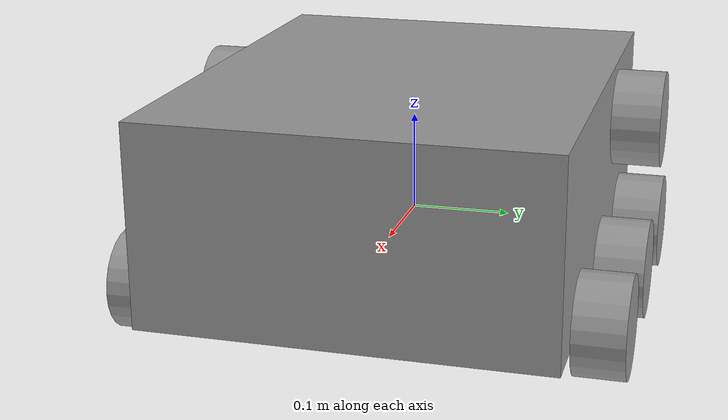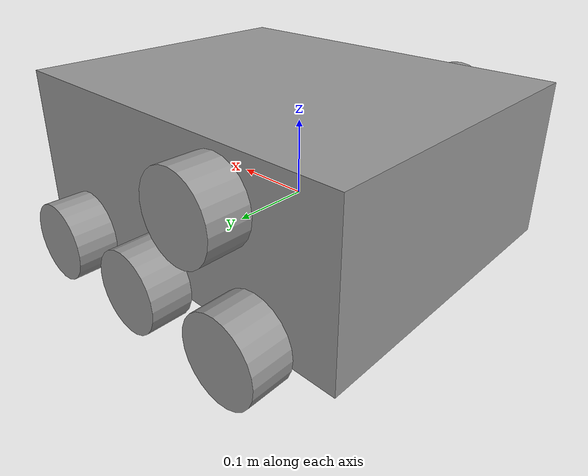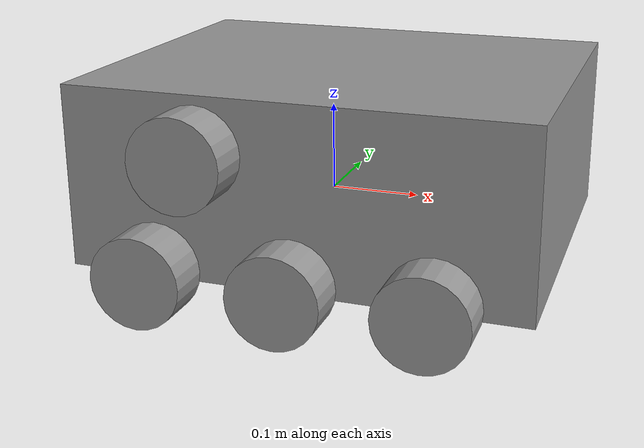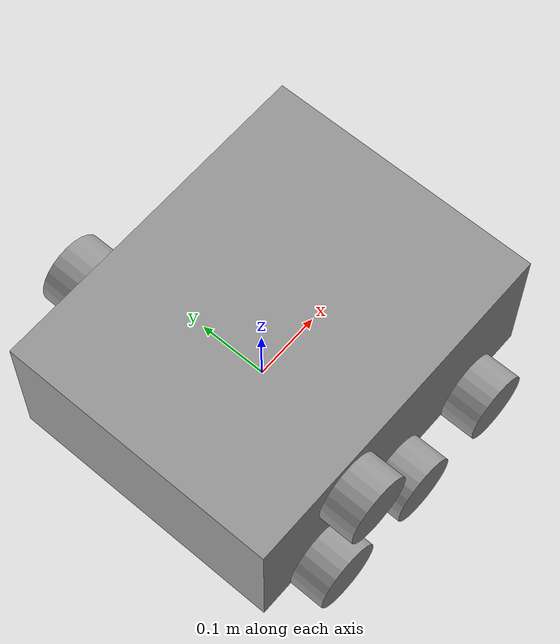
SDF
<?xml version='1.0'?>
<sdf version='1.6'>
  <model name='Guntank_base'>
    <link name='link_0'>
      <pose frame=''>0.022222 1e-06 0.051111 0 -0 0</pose>
      <inertial>
        <mass>1</mass>
        <inertia>
          <ixx>0.166667</ixx>
          <ixy>0</ixy>
          <ixz>0</ixz>
          <iyy>0.166667</iyy>
          <iyz>0</iyz>
          <izz>0.166667</izz>
        </inertia>
        <pose frame=''>0 0 0 0 -0 0</pose>
      </inertial>
      <gravity>1</gravity>
      <self_collide>0</self_collide>
      <kinematic>0</kinematic>
      <visual name='visual'>
        <pose frame=''>0 0 0 0 -0 0</pose>
        <geometry>
          <box>
            <size>0.5 0.4 0.2</size>
          </box>
        </geometry>
        <material>
          <lighting>1</lighting>
          <script>
            <uri>file://media/materials/scripts/gazebo.material</uri>
            <name>Gazebo/Grey</name>
          </script>
          <ambient>0.3 0.3 0.3 1</ambient>
          <diffuse>0.7 0.7 0.7 1</diffuse>
          <specular>0.01 0.01 0.01 1</specular>
          <emissive>0 0 0 1</emissive>
          <shader type='vertex'>
            <normal_map>__default__</normal_map>
          </shader>
        </material>
        <transparency>0</transparency>
        <cast_shadows>1</cast_shadows>
      </visual>
      <collision name='collision'>
        <laser_retro>0</laser_retro>
        <max_contacts>10</max_contacts>
        <pose frame=''>0 0 0 0 -0 0</pose>
        <geometry>
          <box>
            <size>0.5 0.4 0.2</size>
          </box>
        </geometry>
        <surface>
          <friction>
            <ode>
              <mu>1</mu>
              <mu2>1</mu2>
              <fdir1>0 0 0</fdir1>
              <slip1>0</slip1>
              <slip2>0</slip2>
            </ode>
            <torsional>
              <coefficient>1</coefficient>
              <patch_radius>0</patch_radius>
              <surface_radius>0</surface_radius>
              <use_patch_radius>1</use_patch_radius>
              <ode>
                <slip>0</slip>
              </ode>
            </torsional>
          </friction>
          <bounce>
            <restitution_coefficient>0</restitution_coefficient>
            <threshold>1e+06</threshold>
          </bounce>
          <contact>
            <collide_without_contact>0</collide_without_contact>
            <collide_without_contact_bitmask>1</collide_without_contact_bitmask>
            <collide_bitmask>1</collide_bitmask>
            <ode>
              <soft_cfm>0</soft_cfm>
              <soft_erp>0.2</soft_erp>
              <kp>1e+13</kp>
              <kd>1</kd>
              <max_vel>0.01</max_vel>
              <min_depth>0</min_depth>
            </ode>
            <bullet>
              <split_impulse>1</split_impulse>
              <split_impulse_penetration_threshold>-0.01</split_impulse_penetration_threshold>
              <soft_cfm>0</soft_cfm>
              <soft_erp>0.2</soft_erp>
              <kp>1e+13</kp>
              <kd>1</kd>
            </bullet>
          </contact>
        </surface>
      </collision>
    </link>
    <link name='link_1'>
      <pose frame=''>-0.127778 -0.225012 -0.038889 1.5707 -0 0</pose>
      <inertial>
        <mass>1</mass>
        <inertia>
          <ixx>0.145833</ixx>
          <ixy>0</ixy>
          <ixz>0</ixz>
          <iyy>0.145833</iyy>
          <iyz>0</iyz>
          <izz>0.125</izz>
        </inertia>
        <pose frame=''>0 0 0 0 -0 0</pose>
      </inertial>
      <gravity>1</gravity>
      <self_collide>0</self_collide>
      <kinematic>0</kinematic>
      <visual name='visual'>
        <pose frame=''>0 0 0 0 -0 0</pose>
        <geometry>
          <cylinder>
            <radius>0.05</radius>
            <length>0.05</length>
          </cylinder>
        </geometry>
        <material>
          <lighting>1</lighting>
          <script>
            <uri>file://media/materials/scripts/gazebo.material</uri>
            <name>Gazebo/Grey</name>
          </script>
          <ambient>0.3 0.3 0.3 1</ambient>
          <diffuse>0.7 0.7 0.7 1</diffuse>
          <specular>0.01 0.01 0.01 1</specular>
          <emissive>0 0 0 1</emissive>
          <shader type='vertex'>
            <normal_map>__default__</normal_map>
          </shader>
        </material>
        <transparency>0</transparency>
        <cast_shadows>1</cast_shadows>
      </visual>
      <collision name='collision'>
        <laser_retro>0</laser_retro>
        <max_contacts>10</max_contacts>
        <pose frame=''>0 0 0 0 -0 0</pose>
        <geometry>
          <cylinder>
            <radius>0.05</radius>
            <length>0.05</length>
          </cylinder>
        </geometry>
        <surface>
          <friction>
            <ode>
              <mu>1</mu>
              <mu2>1</mu2>
              <fdir1>0 0 0</fdir1>
              <slip1>0</slip1>
              <slip2>0</slip2>
            </ode>
            <torsional>
              <coefficient>1</coefficient>
              <patch_radius>0</patch_radius>
              <surface_radius>0</surface_radius>
              <use_patch_radius>1</use_patch_radius>
              <ode>
                <slip>0</slip>
              </ode>
            </torsional>
          </friction>
          <bounce>
            <restitution_coefficient>0</restitution_coefficient>
            <threshold>1e+06</threshold>
          </bounce>
          <contact>
            <collide_without_contact>0</collide_without_contact>
            <collide_without_contact_bitmask>1</collide_without_contact_bitmask>
            <collide_bitmask>1</collide_bitmask>
            <ode>
              <soft_cfm>0</soft_cfm>
              <soft_erp>0.2</soft_erp>
              <kp>1e+13</kp>
              <kd>1</kd>
              <max_vel>0.01</max_vel>
              <min_depth>0</min_depth>
            </ode>
            <bullet>
              <split_impulse>1</split_impulse>
              <split_impulse_penetration_threshold>-0.01</split_impulse_penetration_threshold>
              <soft_cfm>0</soft_cfm>
              <soft_erp>0.2</soft_erp>
              <kp>1e+13</kp>
              <kd>1</kd>
            </bullet>
          </contact>
        </surface>
      </collision>
    </link>
    <link name='link_1_clone'>
      <pose frame=''>0.022222 -0.225004 -0.038889 1.5707 -0 0</pose>
      <inertial>
        <mass>1</mass>
        <inertia>
          <ixx>0.145833</ixx>
          <ixy>0</ixy>
          <ixz>0</ixz>
          <iyy>0.145833</iyy>
          <iyz>0</iyz>
          <izz>0.125</izz>
        </inertia>
        <pose frame=''>0 0 0 0 -0 0</pose>
      </inertial>
      <self_collide>0</self_collide>
      <kinematic>0</kinematic>
      <visual name='visual'>
        <pose frame=''>0 0 0 0 -0 0</pose>
        <geometry>
          <cylinder>
            <radius>0.05</radius>
            <length>0.05</length>
          </cylinder>
        </geometry>
        <material>
          <lighting>1</lighting>
          <script>
            <uri>file://media/materials/scripts/gazebo.material</uri>
            <name>Gazebo/Grey</name>
          </script>
          <ambient>0.3 0.3 0.3 1</ambient>
          <diffuse>0.7 0.7 0.7 1</diffuse>
          <specular>0.01 0.01 0.01 1</specular>
          <emissive>0 0 0 1</emissive>
          <shader type='vertex'>
            <normal_map>__default__</normal_map>
          </shader>
        </material>
        <transparency>0</transparency>
        <cast_shadows>1</cast_shadows>
      </visual>
      <collision name='collision'>
        <laser_retro>0</laser_retro>
        <max_contacts>10</max_contacts>
        <pose frame=''>0 0 0 0 -0 0</pose>
        <geometry>
          <cylinder>
            <radius>0.05</radius>
            <length>0.05</length>
          </cylinder>
        </geometry>
        <surface>
          <friction>
            <ode>
              <mu>1</mu>
              <mu2>1</mu2>
              <fdir1>0 0 0</fdir1>
              <slip1>0</slip1>
              <slip2>0</slip2>
            </ode>
            <torsional>
              <coefficient>1</coefficient>
              <patch_radius>0</patch_radius>
              <surface_radius>0</surface_radius>
              <use_patch_radius>1</use_patch_radius>
              <ode>
                <slip>0</slip>
              </ode>
            </torsional>
          </friction>
          <bounce>
            <restitution_coefficient>0</restitution_coefficient>
            <threshold>1e+06</threshold>
          </bounce>
          <contact>
            <collide_without_contact>0</collide_without_contact>
            <collide_without_contact_bitmask>1</collide_without_contact_bitmask>
            <collide_bitmask>1</collide_bitmask>
            <ode>
              <soft_cfm>0</soft_cfm>
              <soft_erp>0.2</soft_erp>
              <kp>1e+13</kp>
              <kd>1</kd>
              <max_vel>0.01</max_vel>
              <min_depth>0</min_depth>
            </ode>
            <bullet>
              <split_impulse>1</split_impulse>
              <split_impulse_penetration_threshold>-0.01</split_impulse_penetration_threshold>
              <soft_cfm>0</soft_cfm>
              <soft_erp>0.2</soft_erp>
              <kp>1e+13</kp>
              <kd>1</kd>
            </bullet>
          </contact>
        </surface>
      </collision>
    </link>
    <link name='link_1_clone_0'>
      <pose frame=''>0.172222 -0.225004 -0.038889 1.5707 -0 0</pose>
      <inertial>
        <mass>1</mass>
        <inertia>
          <ixx>0.145833</ixx>
          <ixy>0</ixy>
          <ixz>0</ixz>
          <iyy>0.145833</iyy>
          <iyz>0</iyz>
          <izz>0.125</izz>
        </inertia>
        <pose frame=''>0 0 0 0 -0 0</pose>
      </inertial>
      <self_collide>0</self_collide>
      <kinematic>0</kinematic>
      <visual name='visual'>
        <pose frame=''>0 0 0 0 -0 0</pose>
        <geometry>
          <cylinder>
            <radius>0.05</radius>
            <length>0.05</length>
          </cylinder>
        </geometry>
        <material>
          <lighting>1</lighting>
          <script>
            <uri>file://media/materials/scripts/gazebo.material</uri>
            <name>Gazebo/Grey</name>
          </script>
          <ambient>0.3 0.3 0.3 1</ambient>
          <diffuse>0.7 0.7 0.7 1</diffuse>
          <specular>0.01 0.01 0.01 1</specular>
          <emissive>0 0 0 1</emissive>
          <shader type='vertex'>
            <normal_map>__default__</normal_map>
          </shader>
        </material>
        <transparency>0</transparency>
        <cast_shadows>1</cast_shadows>
      </visual>
      <collision name='collision'>
        <laser_retro>0</laser_retro>
        <max_contacts>10</max_contacts>
        <pose frame=''>0 0 0 0 -0 0</pose>
        <geometry>
          <cylinder>
            <radius>0.05</radius>
            <length>0.05</length>
          </cylinder>
        </geometry>
        <surface>
          <friction>
            <ode>
              <mu>1</mu>
              <mu2>1</mu2>
              <fdir1>0 0 0</fdir1>
              <slip1>0</slip1>
              <slip2>0</slip2>
            </ode>
            <torsional>
              <coefficient>1</coefficient>
              <patch_radius>0</patch_radius>
              <surface_radius>0</surface_radius>
              <use_patch_radius>1</use_patch_radius>
              <ode>
                <slip>0</slip>
              </ode>
            </torsional>
          </friction>
          <bounce>
            <restitution_coefficient>0</restitution_coefficient>
            <threshold>1e+06</threshold>
          </bounce>
          <contact>
            <collide_without_contact>0</collide_without_contact>
            <collide_without_contact_bitmask>1</collide_without_contact_bitmask>
            <collide_bitmask>1</collide_bitmask>
            <ode>
              <soft_cfm>0</soft_cfm>
              <soft_erp>0.2</soft_erp>
              <kp>1e+13</kp>
              <kd>1</kd>
              <max_vel>0.01</max_vel>
              <min_depth>0</min_depth>
            </ode>
            <bullet>
              <split_impulse>1</split_impulse>
              <split_impulse_penetration_threshold>-0.01</split_impulse_penetration_threshold>
              <soft_cfm>0</soft_cfm>
              <soft_erp>0.2</soft_erp>
              <kp>1e+13</kp>
              <kd>1</kd>
            </bullet>
          </contact>
        </surface>
      </collision>
    </link>
    <link name='link_1_clone_1'>
      <pose frame=''>-0.077778 -0.225004 0.091111 1.5707 -0 0</pose>
      <inertial>
        <mass>1</mass>
        <inertia>
          <ixx>0.145833</ixx>
          <ixy>0</ixy>
          <ixz>0</ixz>
          <iyy>0.145833</iyy>
          <iyz>0</iyz>
          <izz>0.125</izz>
        </inertia>
        <pose frame=''>0 0 0 0 -0 0</pose>
      </inertial>
      <self_collide>0</self_collide>
      <kinematic>0</kinematic>
      <visual name='visual'>
        <pose frame=''>0 0 0 0 -0 0</pose>
        <geometry>
          <cylinder>
            <radius>0.05</radius>
            <length>0.05</length>
          </cylinder>
        </geometry>
        <material>
          <lighting>1</lighting>
          <script>
            <uri>file://media/materials/scripts/gazebo.material</uri>
            <name>Gazebo/Grey</name>
          </script>
          <ambient>0.3 0.3 0.3 1</ambient>
          <diffuse>0.7 0.7 0.7 1</diffuse>
          <specular>0.01 0.01 0.01 1</specular>
          <emissive>0 0 0 1</emissive>
          <shader type='vertex'>
            <normal_map>__default__</normal_map>
          </shader>
        </material>
        <transparency>0</transparency>
        <cast_shadows>1</cast_shadows>
      </visual>
      <collision name='collision'>
        <laser_retro>0</laser_retro>
        <max_contacts>10</max_contacts>
        <pose frame=''>0 0 0 0 -0 0</pose>
        <geometry>
          <cylinder>
            <radius>0.05</radius>
            <length>0.05</length>
          </cylinder>
        </geometry>
        <surface>
          <friction>
            <ode>
              <mu>1</mu>
              <mu2>1</mu2>
              <fdir1>0 0 0</fdir1>
              <slip1>0</slip1>
              <slip2>0</slip2>
            </ode>
            <torsional>
              <coefficient>1</coefficient>
              <patch_radius>0</patch_radius>
              <surface_radius>0</surface_radius>
              <use_patch_radius>1</use_patch_radius>
              <ode>
                <slip>0</slip>
              </ode>
            </torsional>
          </friction>
          <bounce>
            <restitution_coefficient>0</restitution_coefficient>
            <threshold>1e+06</threshold>
          </bounce>
          <contact>
            <collide_without_contact>0</collide_without_contact>
            <collide_without_contact_bitmask>1</collide_without_contact_bitmask>
            <collide_bitmask>1</collide_bitmask>
            <ode>
              <soft_cfm>0</soft_cfm>
              <soft_erp>0.2</soft_erp>
              <kp>1e+13</kp>
              <kd>1</kd>
              <max_vel>0.01</max_vel>
              <min_depth>0</min_depth>
            </ode>
            <bullet>
              <split_impulse>1</split_impulse>
              <split_impulse_penetration_threshold>-0.01</split_impulse_penetration_threshold>
              <soft_cfm>0</soft_cfm>
              <soft_erp>0.2</soft_erp>
              <kp>1e+13</kp>
              <kd>1</kd>
            </bullet>
          </contact>
        </surface>
      </collision>
    </link>
    <link name='link_1_clone_2'>
      <pose frame=''>-0.127778 0.225006 -0.038889 1.5707 -0 0</pose>
      <inertial>
        <mass>1</mass>
        <inertia>
          <ixx>0.145833</ixx>
          <ixy>0</ixy>
          <ixz>0</ixz>
          <iyy>0.145833</iyy>
          <iyz>0</iyz>
          <izz>0.125</izz>
        </inertia>
        <pose frame=''>0 0 0 0 -0 0</pose>
      </inertial>
      <self_collide>0</self_collide>
      <kinematic>0</kinematic>
      <visual name='visual'>
        <pose frame=''>0 0 0 0 -0 0</pose>
        <geometry>
          <cylinder>
            <radius>0.05</radius>
            <length>0.05</length>
          </cylinder>
        </geometry>
        <material>
          <lighting>1</lighting>
          <script>
            <uri>file://media/materials/scripts/gazebo.material</uri>
            <name>Gazebo/Grey</name>
          </script>
          <ambient>0.3 0.3 0.3 1</ambient>
          <diffuse>0.7 0.7 0.7 1</diffuse>
          <specular>0.01 0.01 0.01 1</specular>
          <emissive>0 0 0 1</emissive>
          <shader type='vertex'>
            <normal_map>__default__</normal_map>
          </shader>
        </material>
        <transparency>0</transparency>
        <cast_shadows>1</cast_shadows>
      </visual>
      <collision name='collision'>
        <laser_retro>0</laser_retro>
        <max_contacts>10</max_contacts>
        <pose frame=''>0 0 0 0 -0 0</pose>
        <geometry>
          <cylinder>
            <radius>0.05</radius>
            <length>0.05</length>
          </cylinder>
        </geometry>
        <surface>
          <friction>
            <ode>
              <mu>1</mu>
              <mu2>1</mu2>
              <fdir1>0 0 0</fdir1>
              <slip1>0</slip1>
              <slip2>0</slip2>
            </ode>
            <torsional>
              <coefficient>1</coefficient>
              <patch_radius>0</patch_radius>
              <surface_radius>0</surface_radius>
              <use_patch_radius>1</use_patch_radius>
              <ode>
                <slip>0</slip>
              </ode>
            </torsional>
          </friction>
          <bounce>
            <restitution_coefficient>0</restitution_coefficient>
            <threshold>1e+06</threshold>
          </bounce>
          <contact>
            <collide_without_contact>0</collide_without_contact>
            <collide_without_contact_bitmask>1</collide_without_contact_bitmask>
            <collide_bitmask>1</collide_bitmask>
            <ode>
              <soft_cfm>0</soft_cfm>
              <soft_erp>0.2</soft_erp>
              <kp>1e+13</kp>
              <kd>1</kd>
              <max_vel>0.01</max_vel>
              <min_depth>0</min_depth>
            </ode>
            <bullet>
              <split_impulse>1</split_impulse>
              <split_impulse_penetration_threshold>-0.01</split_impulse_penetration_threshold>
              <soft_cfm>0</soft_cfm>
              <soft_erp>0.2</soft_erp>
              <kp>1e+13</kp>
              <kd>1</kd>
            </bullet>
          </contact>
        </surface>
      </collision>
    </link>
    <link name='link_1_clone_3'>
      <pose frame=''>0.022222 0.225006 -0.038889 1.5707 -0 0</pose>
      <inertial>
        <mass>1</mass>
        <inertia>
          <ixx>0.145833</ixx>
          <ixy>0</ixy>
          <ixz>0</ixz>
          <iyy>0.145833</iyy>
          <iyz>0</iyz>
          <izz>0.125</izz>
        </inertia>
        <pose frame=''>0 0 0 0 -0 0</pose>
      </inertial>
      <self_collide>0</self_collide>
      <kinematic>0</kinematic>
      <visual name='visual'>
        <pose frame=''>0 0 0 0 -0 0</pose>
        <geometry>
          <cylinder>
            <radius>0.05</radius>
            <length>0.05</length>
          </cylinder>
        </geometry>
        <material>
          <lighting>1</lighting>
          <script>
            <uri>file://media/materials/scripts/gazebo.material</uri>
            <name>Gazebo/Grey</name>
          </script>
          <ambient>0.3 0.3 0.3 1</ambient>
          <diffuse>0.7 0.7 0.7 1</diffuse>
          <specular>0.01 0.01 0.01 1</specular>
          <emissive>0 0 0 1</emissive>
          <shader type='vertex'>
            <normal_map>__default__</normal_map>
          </shader>
        </material>
        <transparency>0</transparency>
        <cast_shadows>1</cast_shadows>
      </visual>
      <collision name='collision'>
        <laser_retro>0</laser_retro>
        <max_contacts>10</max_contacts>
        <pose frame=''>0 0 0 0 -0 0</pose>
        <geometry>
          <cylinder>
            <radius>0.05</radius>
            <length>0.05</length>
          </cylinder>
        </geometry>
        <surface>
          <friction>
            <ode>
              <mu>1</mu>
              <mu2>1</mu2>
              <fdir1>0 0 0</fdir1>
              <slip1>0</slip1>
              <slip2>0</slip2>
            </ode>
            <torsional>
              <coefficient>1</coefficient>
              <patch_radius>0</patch_radius>
              <surface_radius>0</surface_radius>
              <use_patch_radius>1</use_patch_radius>
              <ode>
                <slip>0</slip>
              </ode>
            </torsional>
          </friction>
          <bounce>
            <restitution_coefficient>0</restitution_coefficient>
            <threshold>1e+06</threshold>
          </bounce>
          <contact>
            <collide_without_contact>0</collide_without_contact>
            <collide_without_contact_bitmask>1</collide_without_contact_bitmask>
            <collide_bitmask>1</collide_bitmask>
            <ode>
              <soft_cfm>0</soft_cfm>
              <soft_erp>0.2</soft_erp>
              <kp>1e+13</kp>
              <kd>1</kd>
              <max_vel>0.01</max_vel>
              <min_depth>0</min_depth>
            </ode>
            <bullet>
              <split_impulse>1</split_impulse>
              <split_impulse_penetration_threshold>-0.01</split_impulse_penetration_threshold>
              <soft_cfm>0</soft_cfm>
              <soft_erp>0.2</soft_erp>
              <kp>1e+13</kp>
              <kd>1</kd>
            </bullet>
          </contact>
        </surface>
      </collision>
    </link>
    <link name='link_1_clone_4'>
      <pose frame=''>0.172222 0.225006 -0.038889 1.5707 -0 0</pose>
      <inertial>
        <mass>1</mass>
        <inertia>
          <ixx>0.145833</ixx>
          <ixy>0</ixy>
          <ixz>0</ixz>
          <iyy>0.145833</iyy>
          <iyz>0</iyz>
          <izz>0.125</izz>
        </inertia>
        <pose frame=''>0 0 0 0 -0 0</pose>
      </inertial>
      <self_collide>0</self_collide>
      <kinematic>0</kinematic>
      <visual name='visual'>
        <pose frame=''>0 0 0 0 -0 0</pose>
        <geometry>
          <cylinder>
            <radius>0.05</radius>
            <length>0.05</length>
          </cylinder>
        </geometry>
        <material>
          <lighting>1</lighting>
          <script>
            <uri>file://media/materials/scripts/gazebo.material</uri>
            <name>Gazebo/Grey</name>
          </script>
          <ambient>0.3 0.3 0.3 1</ambient>
          <diffuse>0.7 0.7 0.7 1</diffuse>
          <specular>0.01 0.01 0.01 1</specular>
          <emissive>0 0 0 1</emissive>
          <shader type='vertex'>
            <normal_map>__default__</normal_map>
          </shader>
        </material>
        <transparency>0</transparency>
        <cast_shadows>1</cast_shadows>
      </visual>
      <collision name='collision'>
        <laser_retro>0</laser_retro>
        <max_contacts>10</max_contacts>
        <pose frame=''>0 0 0 0 -0 0</pose>
        <geometry>
          <cylinder>
            <radius>0.05</radius>
            <length>0.05</length>
          </cylinder>
        </geometry>
        <surface>
          <friction>
            <ode>
              <mu>1</mu>
              <mu2>1</mu2>
              <fdir1>0 0 0</fdir1>
              <slip1>0</slip1>
              <slip2>0</slip2>
            </ode>
            <torsional>
              <coefficient>1</coefficient>
              <patch_radius>0</patch_radius>
              <surface_radius>0</surface_radius>
              <use_patch_radius>1</use_patch_radius>
              <ode>
                <slip>0</slip>
              </ode>
            </torsional>
          </friction>
          <bounce>
            <restitution_coefficient>0</restitution_coefficient>
            <threshold>1e+06</threshold>
          </bounce>
          <contact>
            <collide_without_contact>0</collide_without_contact>
            <collide_without_contact_bitmask>1</collide_without_contact_bitmask>
            <collide_bitmask>1</collide_bitmask>
            <ode>
              <soft_cfm>0</soft_cfm>
              <soft_erp>0.2</soft_erp>
              <kp>1e+13</kp>
              <kd>1</kd>
              <max_vel>0.01</max_vel>
              <min_depth>0</min_depth>
            </ode>
            <bullet>
              <split_impulse>1</split_impulse>
              <split_impulse_penetration_threshold>-0.01</split_impulse_penetration_threshold>
              <soft_cfm>0</soft_cfm>
              <soft_erp>0.2</soft_erp>
              <kp>1e+13</kp>
              <kd>1</kd>
            </bullet>
          </contact>
        </surface>
      </collision>
    </link>
    <link name='link_1_clone_5'>
      <pose frame=''>-0.077778 0.225006 0.091111 1.5707 -0 0</pose>
      <inertial>
        <mass>1</mass>
        <inertia>
          <ixx>0.145833</ixx>
          <ixy>0</ixy>
          <ixz>0</ixz>
          <iyy>0.145833</iyy>
          <iyz>0</iyz>
          <izz>0.125</izz>
        </inertia>
        <pose frame=''>0 0 0 0 -0 0</pose>
      </inertial>
      <self_collide>0</self_collide>
      <kinematic>0</kinematic>
      <visual name='visual'>
        <pose frame=''>0 0 0 0 -0 0</pose>
        <geometry>
          <cylinder>
            <radius>0.05</radius>
            <length>0.05</length>
          </cylinder>
        </geometry>
        <material>
          <lighting>1</lighting>
          <script>
            <uri>file://media/materials/scripts/gazebo.material</uri>
            <name>Gazebo/Grey</name>
          </script>
          <ambient>0.3 0.3 0.3 1</ambient>
          <diffuse>0.7 0.7 0.7 1</diffuse>
          <specular>0.01 0.01 0.01 1</specular>
          <emissive>0 0 0 1</emissive>
          <shader type='vertex'>
            <normal_map>__default__</normal_map>
          </shader>
        </material>
        <transparency>0</transparency>
        <cast_shadows>1</cast_shadows>
      </visual>
      <collision name='collision'>
        <laser_retro>0</laser_retro>
        <max_contacts>10</max_contacts>
        <pose frame=''>0 0 0 0 -0 0</pose>
        <geometry>
          <cylinder>
            <radius>0.05</radius>
            <length>0.05</length>
          </cylinder>
        </geometry>
        <surface>
          <friction>
            <ode>
              <mu>1</mu>
              <mu2>1</mu2>
              <fdir1>0 0 0</fdir1>
              <slip1>0</slip1>
              <slip2>0</slip2>
            </ode>
            <torsional>
              <coefficient>1</coefficient>
              <patch_radius>0</patch_radius>
              <surface_radius>0</surface_radius>
              <use_patch_radius>1</use_patch_radius>
              <ode>
                <slip>0</slip>
              </ode>
            </torsional>
          </friction>
          <bounce>
            <restitution_coefficient>0</restitution_coefficient>
            <threshold>1e+06</threshold>
          </bounce>
          <contact>
            <collide_without_contact>0</collide_without_contact>
            <collide_without_contact_bitmask>1</collide_without_contact_bitmask>
            <collide_bitmask>1</collide_bitmask>
            <ode>
              <soft_cfm>0</soft_cfm>
              <soft_erp>0.2</soft_erp>
              <kp>1e+13</kp>
              <kd>1</kd>
              <max_vel>0.01</max_vel>
              <min_depth>0</min_depth>
            </ode>
            <bullet>
              <split_impulse>1</split_impulse>
              <split_impulse_penetration_threshold>-0.01</split_impulse_penetration_threshold>
              <soft_cfm>0</soft_cfm>
              <soft_erp>0.2</soft_erp>
              <kp>1e+13</kp>
              <kd>1</kd>
            </bullet>
          </contact>
        </surface>
      </collision>
    </link>
    <joint name='link_0_JOINT_0' type='revolute'>
      <parent>link_0</parent>
      <child>link_1_clone_1</child>
      <pose frame=''>0 0 0 0 -0 0</pose>
      <axis>
        <xyz>0 0 1</xyz>
        <use_parent_model_frame>0</use_parent_model_frame>
        <limit>
          <lower>-1.79769e+308</lower>
          <upper>1.79769e+308</upper>
          <effort>-1</effort>
          <velocity>-1</velocity>
        </limit>
        <dynamics>
          <spring_reference>0</spring_reference>
          <spring_stiffness>0</spring_stiffness>
          <damping>0</damping>
        </dynamics>
      </axis>
      <physics>
        <ode>
          <limit>
            <cfm>0</cfm>
            <erp>0.2</erp>
          </limit>
          <suspension>
            <cfm>0</cfm>
            <erp>0.2</erp>
          </suspension>
        </ode>
      </physics>
    </joint>
    <joint name='link_0_JOINT_1' type='revolute'>
      <parent>link_0</parent>
      <child>link_1_clone_5</child>
      <pose frame=''>0 0 0 0 -0 0</pose>
      <axis>
        <xyz>0 0 1</xyz>
        <use_parent_model_frame>0</use_parent_model_frame>
        <limit>
          <lower>-1.79769e+308</lower>
          <upper>1.79769e+308</upper>
          <effort>-1</effort>
          <velocity>-1</velocity>
        </limit>
        <dynamics>
          <spring_reference>0</spring_reference>
          <spring_stiffness>0</spring_stiffness>
          <damping>0</damping>
        </dynamics>
      </axis>
      <physics>
        <ode>
          <limit>
            <cfm>0</cfm>
            <erp>0.2</erp>
          </limit>
          <suspension>
            <cfm>0</cfm>
            <erp>0.2</erp>
          </suspension>
        </ode>
      </physics>
    </joint>
    <joint name='link_0_JOINT_2' type='revolute'>
      <parent>link_0</parent>
      <child>link_1</child>
      <pose frame=''>0 0 0 0 -0 0</pose>
      <axis>
        <xyz>0 0 1</xyz>
        <use_parent_model_frame>0</use_parent_model_frame>
        <limit>
          <lower>-1.79769e+308</lower>
          <upper>1.79769e+308</upper>
          <effort>-1</effort>
          <velocity>-1</velocity>
        </limit>
        <dynamics>
          <spring_reference>0</spring_reference>
          <spring_stiffness>0</spring_stiffness>
          <damping>0</damping>
        </dynamics>
      </axis>
      <physics>
        <ode>
          <limit>
            <cfm>0</cfm>
            <erp>0.2</erp>
          </limit>
          <suspension>
            <cfm>0</cfm>
            <erp>0.2</erp>
          </suspension>
        </ode>
      </physics>
    </joint>
    <joint name='link_0_JOINT_3' type='revolute'>
      <parent>link_0</parent>
      <child>link_1_clone_2</child>
      <pose frame=''>0 0 0 0 -0 0</pose>
      <axis>
        <xyz>0 0 1</xyz>
        <use_parent_model_frame>0</use_parent_model_frame>
        <limit>
          <lower>-1.79769e+308</lower>
          <upper>1.79769e+308</upper>
          <effort>-1</effort>
          <velocity>-1</velocity>
        </limit>
        <dynamics>
          <spring_reference>0</spring_reference>
          <spring_stiffness>0</spring_stiffness>
          <damping>0</damping>
        </dynamics>
      </axis>
      <physics>
        <ode>
          <limit>
            <cfm>0</cfm>
            <erp>0.2</erp>
          </limit>
          <suspension>
            <cfm>0</cfm>
            <erp>0.2</erp>
          </suspension>
        </ode>
      </physics>
    </joint>
    <joint name='link_0_JOINT_4' type='revolute'>
      <parent>link_0</parent>
      <child>link_1_clone</child>
      <pose frame=''>0 0 0 0 -0 0</pose>
      <axis>
        <xyz>0 0 1</xyz>
        <use_parent_model_frame>0</use_parent_model_frame>
        <limit>
          <lower>-1.79769e+308</lower>
          <upper>1.79769e+308</upper>
          <effort>-1</effort>
          <velocity>-1</velocity>
        </limit>
        <dynamics>
          <spring_reference>0</spring_reference>
          <spring_stiffness>0</spring_stiffness>
          <damping>0</damping>
        </dynamics>
      </axis>
      <physics>
        <ode>
          <limit>
            <cfm>0</cfm>
            <erp>0.2</erp>
          </limit>
          <suspension>
            <cfm>0</cfm>
            <erp>0.2</erp>
          </suspension>
        </ode>
      </physics>
    </joint>
    <joint name='link_0_JOINT_5' type='revolute'>
      <parent>link_0</parent>
      <child>link_1_clone_3</child>
      <pose frame=''>0 0 0 0 -0 0</pose>
      <axis>
        <xyz>0 0 1</xyz>
        <use_parent_model_frame>0</use_parent_model_frame>
        <limit>
          <lower>-1.79769e+308</lower>
          <upper>1.79769e+308</upper>
          <effort>-1</effort>
          <velocity>-1</velocity>
        </limit>
        <dynamics>
          <spring_reference>0</spring_reference>
          <spring_stiffness>0</spring_stiffness>
          <damping>0</damping>
        </dynamics>
      </axis>
      <physics>
        <ode>
          <limit>
            <cfm>0</cfm>
            <erp>0.2</erp>
          </limit>
          <suspension>
            <cfm>0</cfm>
            <erp>0.2</erp>
          </suspension>
        </ode>
      </physics>
    </joint>
    <joint name='link_0_JOINT_6' type='revolute'>
      <parent>link_0</parent>
      <child>link_1_clone_0</child>
      <pose frame=''>0 0 0 0 -0 0</pose>
      <axis>
        <xyz>0 0 1</xyz>
        <use_parent_model_frame>0</use_parent_model_frame>
        <limit>
          <lower>-1.79769e+308</lower>
          <upper>1.79769e+308</upper>
          <effort>-1</effort>
          <velocity>-1</velocity>
        </limit>
        <dynamics>
          <spring_reference>0</spring_reference>
          <spring_stiffness>0</spring_stiffness>
          <damping>0</damping>
        </dynamics>
      </axis>
      <physics>
        <ode>
          <limit>
            <cfm>0</cfm>
            <erp>0.2</erp>
          </limit>
          <suspension>
            <cfm>0</cfm>
            <erp>0.2</erp>
          </suspension>
        </ode>
      </physics>
    </joint>
    <joint name='link_0_JOINT_7' type='revolute'>
      <parent>link_0</parent>
      <child>link_1_clone_4</child>
      <pose frame=''>0 0 0 0 -0 0</pose>
      <axis>
        <xyz>0 0 1</xyz>
        <use_parent_model_frame>0</use_parent_model_frame>
        <limit>
          <lower>-1.79769e+308</lower>
          <upper>1.79769e+308</upper>
          <effort>-1</effort>
          <velocity>-1</velocity>
        </limit>
        <dynamics>
          <spring_reference>0</spring_reference>
          <spring_stiffness>0</spring_stiffness>
          <damping>0</damping>
        </dynamics>
      </axis>
      <physics>
        <ode>
          <limit>
            <cfm>0</cfm>
            <erp>0.2</erp>
          </limit>
          <suspension>
            <cfm>0</cfm>
            <erp>0.2</erp>
          </suspension>
        </ode>
      </physics>
    </joint>
    <static>0</static>
    <allow_auto_disable>1</allow_auto_disable>
  </model>
</sdf>
